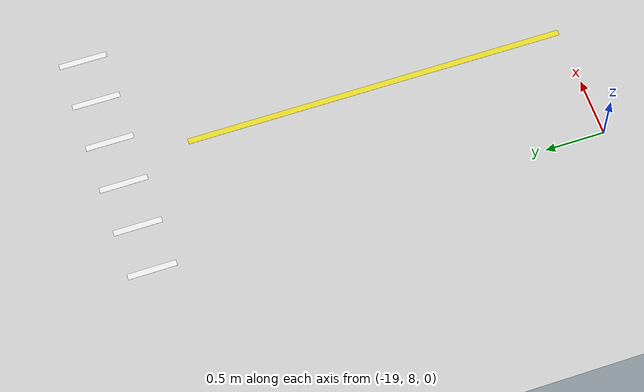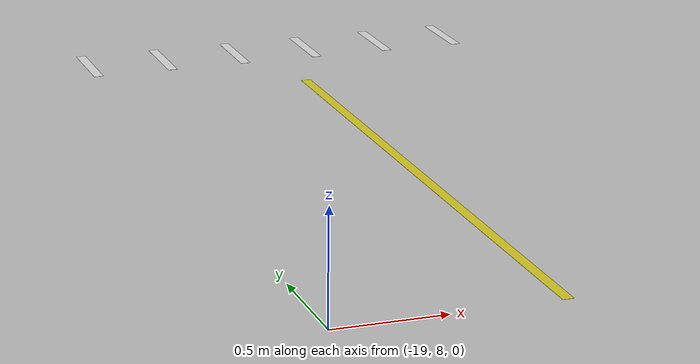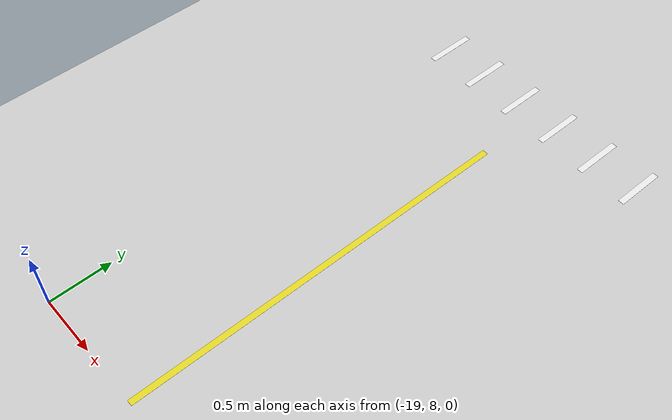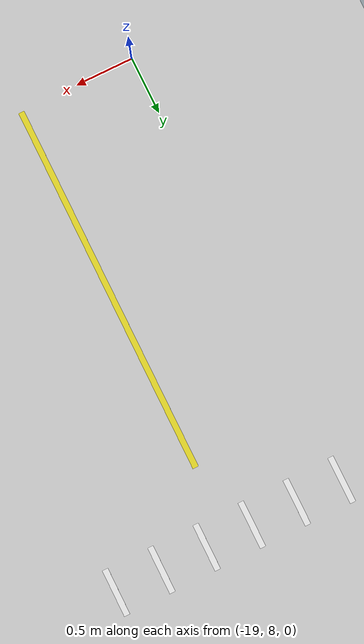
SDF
<sdf version="1.6">
 <world name="default">
  <model name="ground_plane">
   <static>1</static>
   <link name="link">
    <collision name="collision">
     <geometry><plane><normal>0 0 1</normal><size>100 100</size></plane></geometry>
     <surface><friction><ode><mu>100</mu><mu2>50</mu2></ode></friction></surface>
    </collision>
    <visual name="visual">
     <cast_shadows>0</cast_shadows>
     <geometry><plane><normal>0 0 1</normal><size>100 100</size></plane></geometry>
     <material>
      <script><uri>file://media/materials/scripts/gazebo.material</uri><name>Gazebo/Grey</name></script>
     </material>
    </visual>
   </link>
  </model>
  <model name="line320cm_2">
   <link name="link_0">
    <inertial>
     <mass>1</mass>
     <inertia>
      <ixx>0.166667</ixx>
      <ixy>0</ixy>
      <ixz>0</ixz>
      <iyy>0.166667</iyy>
      <iyz>0</iyz>
      <izz>0.166667</izz>
     </inertia>
    </inertial>
    <visual name="visual">
     <geometry><box><size>3.2 0.05 0.001</size></box></geometry>
     <material>
      <lighting>1</lighting>
      <script><uri>file://media/materials/scripts/gazebo.material</uri><name>Gazebo/Yellow</name></script>
     </material>
    </visual>
    <collision name="collision">
     <geometry><box><size>3.2 0.05 1e-05</size></box></geometry>
     <surface>
      <friction>
       <ode><mu>1</mu><mu2>1</mu2><fdir1>0 0 0</fdir1><slip1>0</slip1><slip2>0</slip2></ode>
       <torsional>
        <coefficient>1</coefficient>
        <patch_radius>0</patch_radius>
        <surface_radius>0</surface_radius>
        <use_patch_radius>1</use_patch_radius>
        <ode><slip>0</slip></ode>
       </torsional>
      </friction>
      <bounce><restitution_coefficient>0</restitution_coefficient><threshold>1e+06</threshold></bounce>
      <contact>
       <collide_without_contact>0</collide_without_contact>
       <collide_without_contact_bitmask>1</collide_without_contact_bitmask>
       <collide_bitmask>1</collide_bitmask>
       <ode>
        <soft_cfm>0</soft_cfm>
        <soft_erp>0.2</soft_erp>
        <kp>1e+13</kp>
        <kd>1</kd>
        <max_vel>0.01</max_vel>
        <min_depth>0</min_depth>
       </ode>
       <bullet>
        <split_impulse>1</split_impulse>
        <split_impulse_penetration_threshold>-0.01</split_impulse_penetration_threshold>
        <soft_cfm>0</soft_cfm>
        <soft_erp>0.2</soft_erp>
        <kp>1e+13</kp>
        <kd>1</kd>
       </bullet>
      </contact>
     </surface>
    </collision>
   </link>
   <static>1</static>
   <pose>-18 9.6 0 0 -0 1.5708</pose>
  </model>
  <model name="zebra_crossing_40cmx200cm_2">
   <link name="link_2">
    <inertial>
     <mass>1</mass>
     <inertia>
      <ixx>0.166667</ixx>
      <ixy>0</ixy>
      <ixz>0</ixz>
      <iyy>0.166667</iyy>
      <iyz>0</iyz>
      <izz>0.166667</izz>
     </inertia>
    </inertial>
    <visual name="ModelPreview_5::link_2::visual_1">
     <pose>-0.2 0 0 0 -0 0</pose>
     <geometry><box><size>0.05 0.4 0.001</size></box></geometry>
     <material>
      <lighting>1</lighting>
      <script><uri>file://media/materials/scripts/gazebo.material</uri><name>Gazebo/White</name></script>
     </material>
    </visual>
    <visual name="ModelPreview_5::link_2::visual_3">
     <pose>-0.6 0 0 0 -0 0</pose>
     <geometry><box><size>0.05 0.4 0.001</size></box></geometry>
     <material>
      <lighting>1</lighting>
      <script><uri>file://media/materials/scripts/gazebo.material</uri><name>Gazebo/White</name></script>
     </material>
    </visual>
    <visual name="ModelPreview_5::link_2::visual_4">
     <pose>1 0 0 0 -0 0</pose>
     <geometry><box><size>0.05 0.4 0.001</size></box></geometry>
     <material>
      <lighting>1</lighting>
      <script><uri>file://media/materials/scripts/gazebo.material</uri><name>Gazebo/White</name></script>
     </material>
    </visual>
    <visual name="visual">
     <pose>0.2 0 0 0 -0 0</pose>
     <geometry><box><size>0.05 0.4 0.001</size></box></geometry>
     <material>
      <lighting>1</lighting>
      <script><uri>file://media/materials/scripts/gazebo.material</uri><name>Gazebo/White</name></script>
     </material>
    </visual>
    <visual name="ModelPreview_5::link_2::visual_5">
     <pose>-1 0 0 0 -0 0</pose>
     <geometry><box><size>0.05 0.4 0.001</size></box></geometry>
     <material>
      <lighting>1</lighting>
      <script><uri>file://media/materials/scripts/gazebo.material</uri><name>Gazebo/White</name></script>
     </material>
    </visual>
    <visual name="ModelPreview_5::link_2::visual_2">
     <pose>0.6 0 0 0 -0 0</pose>
     <geometry><box><size>0.05 0.4 0.001</size></box></geometry>
     <material>
      <lighting>1</lighting>
      <script><uri>file://media/materials/scripts/gazebo.material</uri><name>Gazebo/White</name></script>
     </material>
    </visual>
    <collision name="collision_5">
     <pose>-1 0 0 0 -0 0</pose>
     <geometry><box><size>0.05 0.4 1e-05</size></box></geometry>
     <surface>
      <friction>
       <ode><mu>1</mu><mu2>1</mu2><fdir1>0 0 0</fdir1><slip1>0</slip1><slip2>0</slip2></ode>
       <torsional>
        <coefficient>1</coefficient>
        <patch_radius>0</patch_radius>
        <surface_radius>0</surface_radius>
        <use_patch_radius>1</use_patch_radius>
        <ode><slip>0</slip></ode>
       </torsional>
      </friction>
      <bounce><restitution_coefficient>0</restitution_coefficient><threshold>1e+06</threshold></bounce>
      <contact>
       <collide_without_contact>0</collide_without_contact>
       <collide_without_contact_bitmask>1</collide_without_contact_bitmask>
       <collide_bitmask>1</collide_bitmask>
       <ode>
        <soft_cfm>0</soft_cfm>
        <soft_erp>0.2</soft_erp>
        <kp>1e+13</kp>
        <kd>1</kd>
        <max_vel>0.01</max_vel>
        <min_depth>0</min_depth>
       </ode>
       <bullet>
        <split_impulse>1</split_impulse>
        <split_impulse_penetration_threshold>-0.01</split_impulse_penetration_threshold>
        <soft_cfm>0</soft_cfm>
        <soft_erp>0.2</soft_erp>
        <kp>1e+13</kp>
        <kd>1</kd>
       </bullet>
      </contact>
     </surface>
    </collision>
    <collision name="collision">
     <pose>0.2 0 0 0 -0 0</pose>
     <geometry><box><size>0.05 0.4 1e-05</size></box></geometry>
     <surface>
      <friction>
       <ode><mu>1</mu><mu2>1</mu2><fdir1>0 0 0</fdir1><slip1>0</slip1><slip2>0</slip2></ode>
       <torsional>
        <coefficient>1</coefficient>
        <patch_radius>0</patch_radius>
        <surface_radius>0</surface_radius>
        <use_patch_radius>1</use_patch_radius>
        <ode><slip>0</slip></ode>
       </torsional>
      </friction>
      <bounce><restitution_coefficient>0</restitution_coefficient><threshold>1e+06</threshold></bounce>
      <contact>
       <collide_without_contact>0</collide_without_contact>
       <collide_without_contact_bitmask>1</collide_without_contact_bitmask>
       <collide_bitmask>1</collide_bitmask>
       <ode>
        <soft_cfm>0</soft_cfm>
        <soft_erp>0.2</soft_erp>
        <kp>1e+13</kp>
        <kd>1</kd>
        <max_vel>0.01</max_vel>
        <min_depth>0</min_depth>
       </ode>
       <bullet>
        <split_impulse>1</split_impulse>
        <split_impulse_penetration_threshold>-0.01</split_impulse_penetration_threshold>
        <soft_cfm>0</soft_cfm>
        <soft_erp>0.2</soft_erp>
        <kp>1e+13</kp>
        <kd>1</kd>
       </bullet>
      </contact>
     </surface>
    </collision>
    <collision name="collision_3">
     <pose>-0.6 0 0 0 -0 0</pose>
     <geometry><box><size>0.05 0.4 1e-05</size></box></geometry>
     <surface>
      <friction>
       <ode><mu>1</mu><mu2>1</mu2><fdir1>0 0 0</fdir1><slip1>0</slip1><slip2>0</slip2></ode>
       <torsional>
        <coefficient>1</coefficient>
        <patch_radius>0</patch_radius>
        <surface_radius>0</surface_radius>
        <use_patch_radius>1</use_patch_radius>
        <ode><slip>0</slip></ode>
       </torsional>
      </friction>
      <bounce><restitution_coefficient>0</restitution_coefficient><threshold>1e+06</threshold></bounce>
      <contact>
       <collide_without_contact>0</collide_without_contact>
       <collide_without_contact_bitmask>1</collide_without_contact_bitmask>
       <collide_bitmask>1</collide_bitmask>
       <ode>
        <soft_cfm>0</soft_cfm>
        <soft_erp>0.2</soft_erp>
        <kp>1e+13</kp>
        <kd>1</kd>
        <max_vel>0.01</max_vel>
        <min_depth>0</min_depth>
       </ode>
       <bullet>
        <split_impulse>1</split_impulse>
        <split_impulse_penetration_threshold>-0.01</split_impulse_penetration_threshold>
        <soft_cfm>0</soft_cfm>
        <soft_erp>0.2</soft_erp>
        <kp>1e+13</kp>
        <kd>1</kd>
       </bullet>
      </contact>
     </surface>
    </collision>
    <collision name="collision_4">
     <pose>1 0 0 0 -0 0</pose>
     <geometry><box><size>0.05 0.4 1e-05</size></box></geometry>
     <surface>
      <friction>
       <ode><mu>1</mu><mu2>1</mu2><fdir1>0 0 0</fdir1><slip1>0</slip1><slip2>0</slip2></ode>
       <torsional>
        <coefficient>1</coefficient>
        <patch_radius>0</patch_radius>
        <surface_radius>0</surface_radius>
        <use_patch_radius>1</use_patch_radius>
        <ode><slip>0</slip></ode>
       </torsional>
      </friction>
      <bounce><restitution_coefficient>0</restitution_coefficient><threshold>1e+06</threshold></bounce>
      <contact>
       <collide_without_contact>0</collide_without_contact>
       <collide_without_contact_bitmask>1</collide_without_contact_bitmask>
       <collide_bitmask>1</collide_bitmask>
       <ode>
        <soft_cfm>0</soft_cfm>
        <soft_erp>0.2</soft_erp>
        <kp>1e+13</kp>
        <kd>1</kd>
        <max_vel>0.01</max_vel>
        <min_depth>0</min_depth>
       </ode>
       <bullet>
        <split_impulse>1</split_impulse>
        <split_impulse_penetration_threshold>-0.01</split_impulse_penetration_threshold>
        <soft_cfm>0</soft_cfm>
        <soft_erp>0.2</soft_erp>
        <kp>1e+13</kp>
        <kd>1</kd>
       </bullet>
      </contact>
     </surface>
    </collision>
    <collision name="collision_2">
     <pose>0.6 0 0 0 -0 0</pose>
     <geometry><box><size>0.05 0.4 1e-05</size></box></geometry>
     <surface>
      <friction>
       <ode><mu>1</mu><mu2>1</mu2><fdir1>0 0 0</fdir1><slip1>0</slip1><slip2>0</slip2></ode>
       <torsional>
        <coefficient>1</coefficient>
        <patch_radius>0</patch_radius>
        <surface_radius>0</surface_radius>
        <use_patch_radius>1</use_patch_radius>
        <ode><slip>0</slip></ode>
       </torsional>
      </friction>
      <bounce><restitution_coefficient>0</restitution_coefficient><threshold>1e+06</threshold></bounce>
      <contact>
       <collide_without_contact>0</collide_without_contact>
       <collide_without_contact_bitmask>1</collide_without_contact_bitmask>
       <collide_bitmask>1</collide_bitmask>
       <ode>
        <soft_cfm>0</soft_cfm>
        <soft_erp>0.2</soft_erp>
        <kp>1e+13</kp>
        <kd>1</kd>
        <max_vel>0.01</max_vel>
        <min_depth>0</min_depth>
       </ode>
       <bullet>
        <split_impulse>1</split_impulse>
        <split_impulse_penetration_threshold>-0.01</split_impulse_penetration_threshold>
        <soft_cfm>0</soft_cfm>
        <soft_erp>0.2</soft_erp>
        <kp>1e+13</kp>
        <kd>1</kd>
       </bullet>
      </contact>
     </surface>
    </collision>
    <collision name="collision_1">
     <pose>-0.2 0 0 0 -0 0</pose>
     <geometry><box><size>0.05 0.4 1e-05</size></box></geometry>
     <surface>
      <friction>
       <ode><mu>1</mu><mu2>1</mu2><fdir1>0 0 0</fdir1><slip1>0</slip1><slip2>0</slip2></ode>
       <torsional>
        <coefficient>1</coefficient>
        <patch_radius>0</patch_radius>
        <surface_radius>0</surface_radius>
        <use_patch_radius>1</use_patch_radius>
        <ode><slip>0</slip></ode>
       </torsional>
      </friction>
      <bounce><restitution_coefficient>0</restitution_coefficient><threshold>1e+06</threshold></bounce>
      <contact>
       <collide_without_contact>0</collide_without_contact>
       <collide_without_contact_bitmask>1</collide_without_contact_bitmask>
       <collide_bitmask>1</collide_bitmask>
       <ode>
        <soft_cfm>0</soft_cfm>
        <soft_erp>0.2</soft_erp>
        <kp>1e+13</kp>
        <kd>1</kd>
        <max_vel>0.01</max_vel>
        <min_depth>0</min_depth>
       </ode>
       <bullet>
        <split_impulse>1</split_impulse>
        <split_impulse_penetration_threshold>-0.01</split_impulse_penetration_threshold>
        <soft_cfm>0</soft_cfm>
        <soft_erp>0.2</soft_erp>
        <kp>1e+13</kp>
        <kd>1</kd>
       </bullet>
      </contact>
     </surface>
    </collision>
   </link>
   <static>1</static>
   <pose>-18 11.8 0 0 -0 0</pose>
  </model>
 </world>
</sdf>
